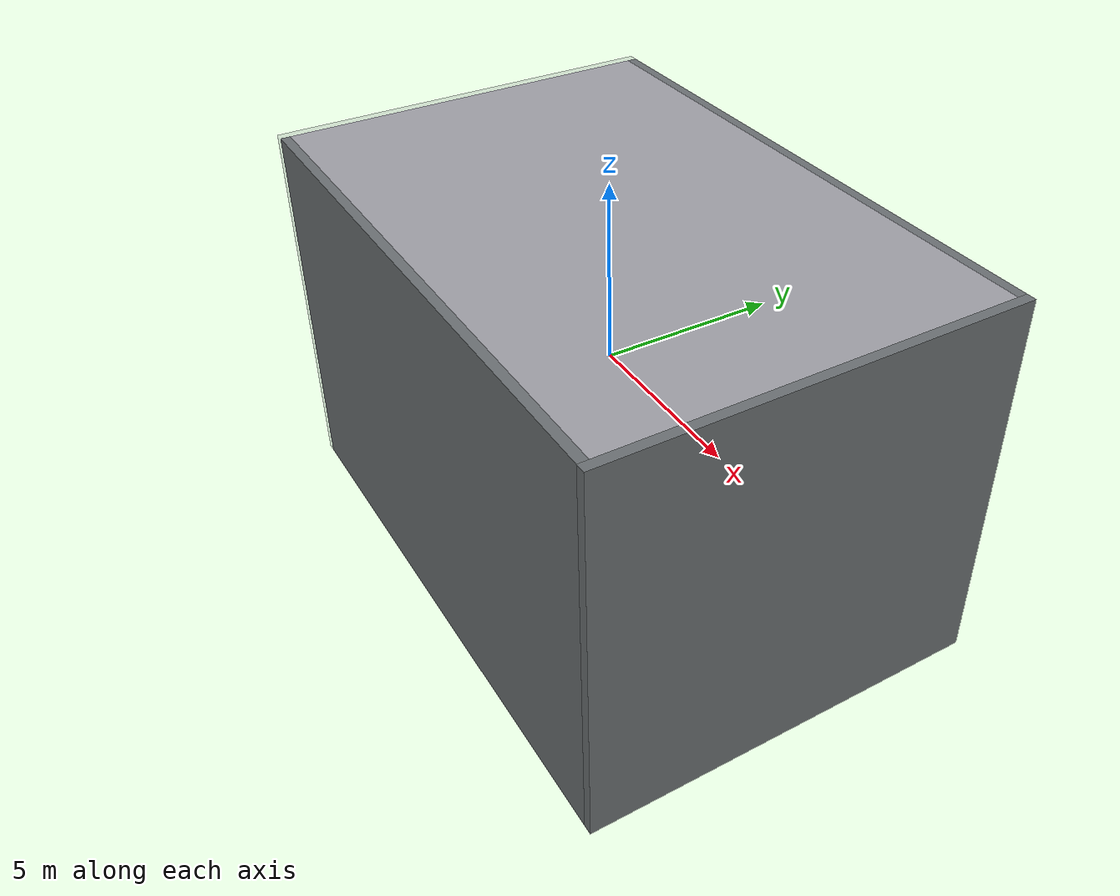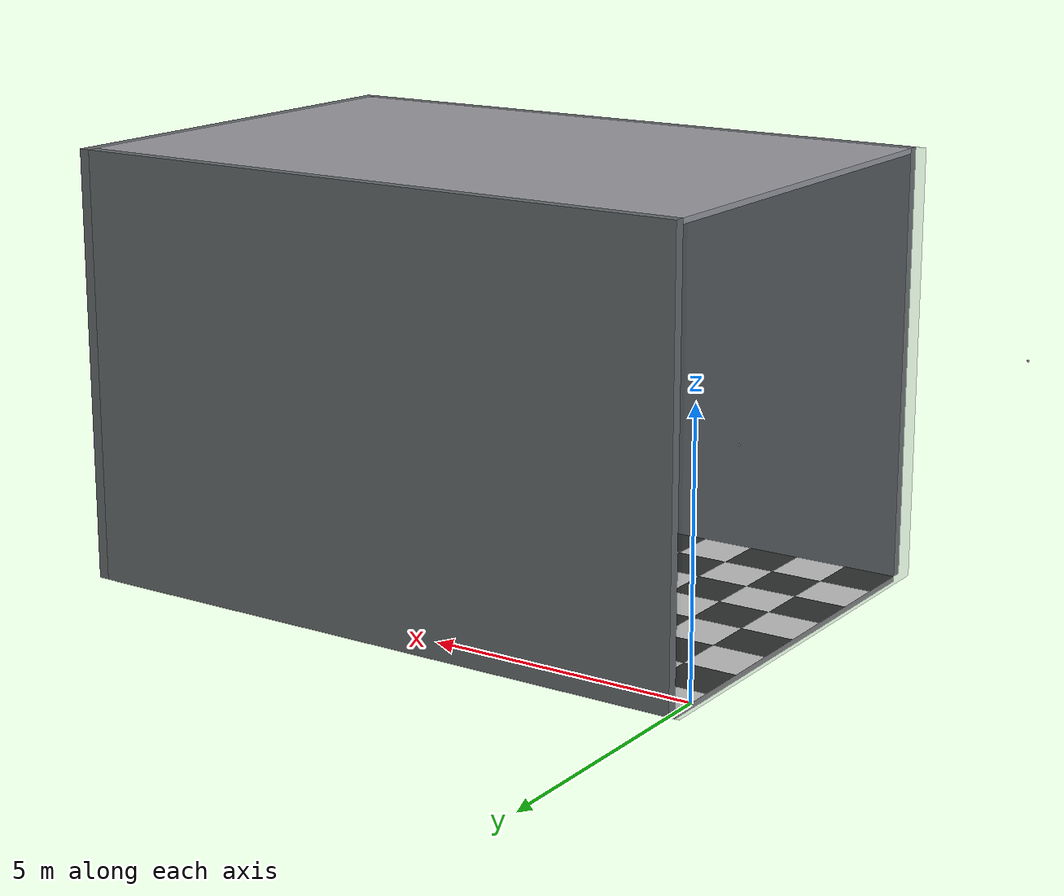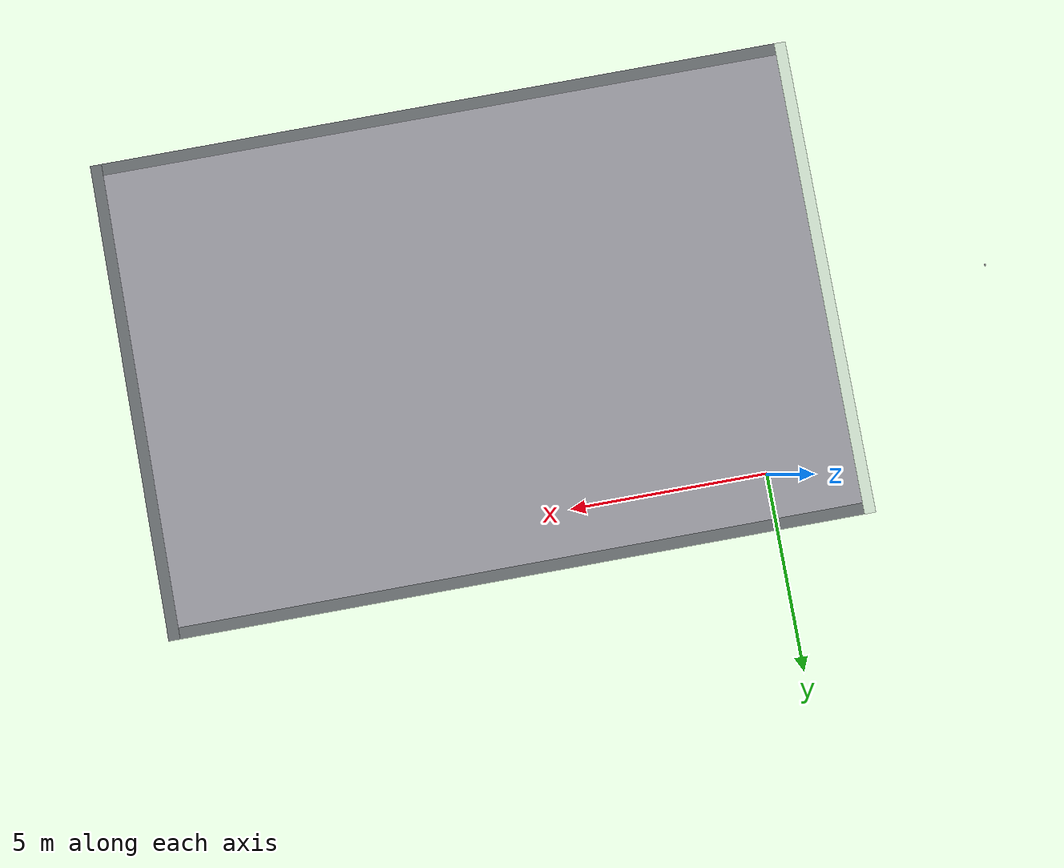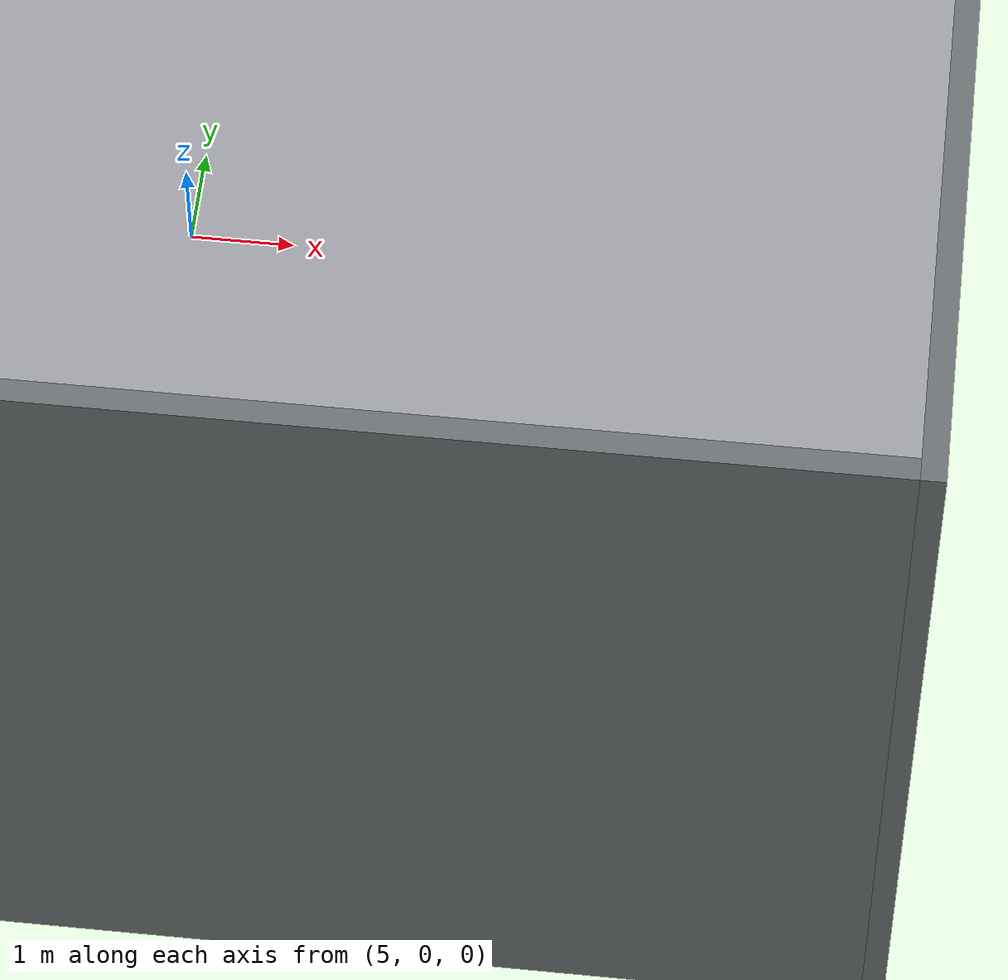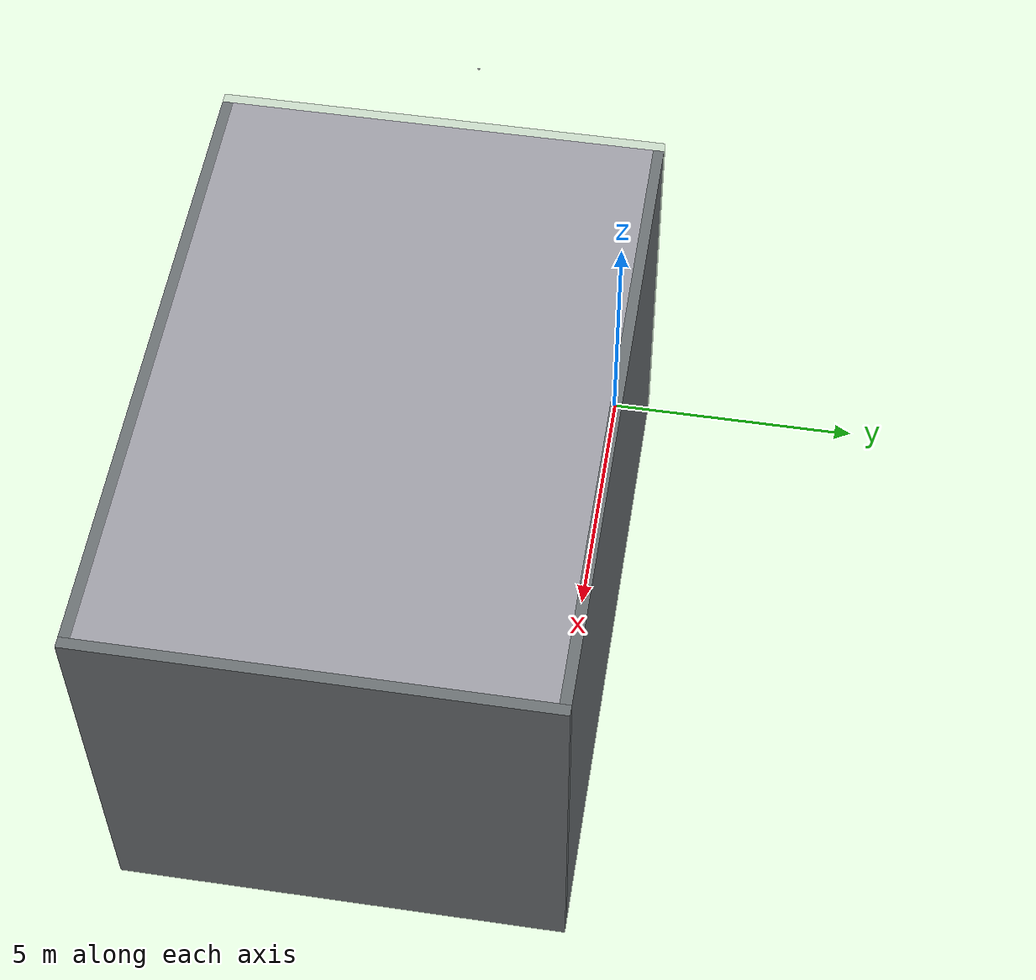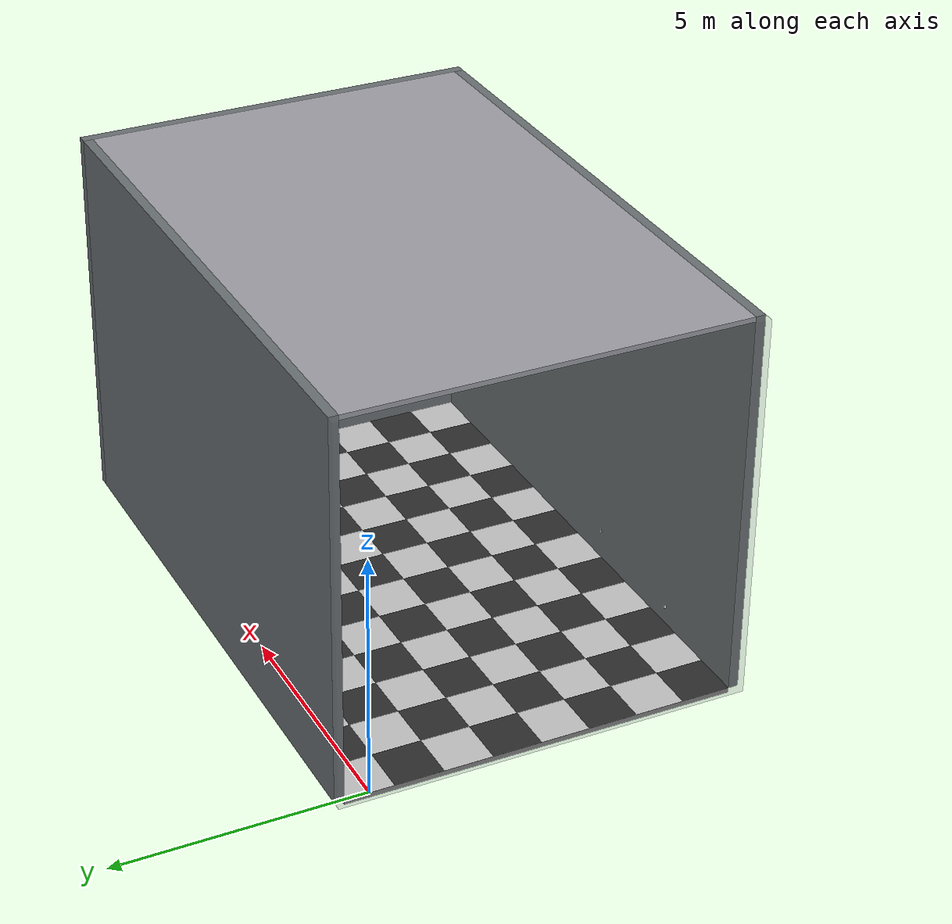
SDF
<?xml version="1.0" encoding="UTF-8"?>
<sdf version="1.9">
  <world name="hangar_lite">
    <physics type="ode">
      <max_step_size>0.004</max_step_size>
      <real_time_factor>1.0</real_time_factor>
      <real_time_update_rate>250</real_time_update_rate>
    </physics>
    <gravity>0 0 -9.8</gravity>
    <magnetic_field>6e-06 2.3e-05 -4.2e-05</magnetic_field>
    <atmosphere type="adiabatic"/>
    <scene>
      <grid>false</grid>
      <ambient>0.45 0.45 0.45 1</ambient>
      <background>0.30 0.30 0.30 1</background>
      <shadows>false</shadows>
    </scene>

    <!-- ==================== FLOOR (12m x 8m) ==================== -->
    <model name="floor">
      <static>true</static>
      <pose>6 -3.5 -0.05 0 0 0</pose>
      <link name="link">
        <collision name="c">
          <geometry><box><size>12.0 8.0 0.1</size></box></geometry>
          <surface><friction><ode/></friction></surface>
        </collision>
        <visual name="v">
          <geometry><box><size>12.0 8.0 0.1</size></box></geometry>
          <material>
            <ambient>0.52 0.52 0.52 1</ambient>
            <diffuse>0.52 0.52 0.52 1</diffuse>
            <specular>0.08 0.08 0.08 1</specular>
          </material>
        </visual>
      </link>
    </model>

    <!-- Full 12m x 8m checkerboard floor (1m tiles, optical-flow friendly) -->
    <model name="floor_tiles">
      <static>true</static>
      <pose>0 0 0.0015 0 0 0</pose>
      <link name="tiles">
        <visual name="t_00_00"><pose>0.5 -7.0 0 0 0 0</pose><geometry><box><size>1 1 0.001</size></box></geometry><material><ambient>0.15 0.15 0.15 1</ambient><diffuse>0.15 0.15 0.15 1</diffuse></material></visual>
        <visual name="t_00_01"><pose>0.5 -6.0 0 0 0 0</pose><geometry><box><size>1 1 0.001</size></box></geometry><material><ambient>0.9 0.9 0.9 1</ambient><diffuse>0.9 0.9 0.9 1</diffuse></material></visual>
        <visual name="t_00_02"><pose>0.5 -5.0 0 0 0 0</pose><geometry><box><size>1 1 0.001</size></box></geometry><material><ambient>0.15 0.15 0.15 1</ambient><diffuse>0.15 0.15 0.15 1</diffuse></material></visual>
        <visual name="t_00_03"><pose>0.5 -4.0 0 0 0 0</pose><geometry><box><size>1 1 0.001</size></box></geometry><material><ambient>0.9 0.9 0.9 1</ambient><diffuse>0.9 0.9 0.9 1</diffuse></material></visual>
        <visual name="t_00_04"><pose>0.5 -3.0 0 0 0 0</pose><geometry><box><size>1 1 0.001</size></box></geometry><material><ambient>0.15 0.15 0.15 1</ambient><diffuse>0.15 0.15 0.15 1</diffuse></material></visual>
        <visual name="t_00_05"><pose>0.5 -2.0 0 0 0 0</pose><geometry><box><size>1 1 0.001</size></box></geometry><material><ambient>0.9 0.9 0.9 1</ambient><diffuse>0.9 0.9 0.9 1</diffuse></material></visual>
        <visual name="t_00_06"><pose>0.5 -1.0 0 0 0 0</pose><geometry><box><size>1 1 0.001</size></box></geometry><material><ambient>0.15 0.15 0.15 1</ambient><diffuse>0.15 0.15 0.15 1</diffuse></material></visual>
        <visual name="t_00_07"><pose>0.5 0.0 0 0 0 0</pose><geometry><box><size>1 1 0.001</size></box></geometry><material><ambient>0.9 0.9 0.9 1</ambient><diffuse>0.9 0.9 0.9 1</diffuse></material></visual>
        <visual name="t_01_00"><pose>1.5 -7.0 0 0 0 0</pose><geometry><box><size>1 1 0.001</size></box></geometry><material><ambient>0.9 0.9 0.9 1</ambient><diffuse>0.9 0.9 0.9 1</diffuse></material></visual>
        <visual name="t_01_01"><pose>1.5 -6.0 0 0 0 0</pose><geometry><box><size>1 1 0.001</size></box></geometry><material><ambient>0.15 0.15 0.15 1</ambient><diffuse>0.15 0.15 0.15 1</diffuse></material></visual>
        <visual name="t_01_02"><pose>1.5 -5.0 0 0 0 0</pose><geometry><box><size>1 1 0.001</size></box></geometry><material><ambient>0.9 0.9 0.9 1</ambient><diffuse>0.9 0.9 0.9 1</diffuse></material></visual>
        <visual name="t_01_03"><pose>1.5 -4.0 0 0 0 0</pose><geometry><box><size>1 1 0.001</size></box></geometry><material><ambient>0.15 0.15 0.15 1</ambient><diffuse>0.15 0.15 0.15 1</diffuse></material></visual>
        <visual name="t_01_04"><pose>1.5 -3.0 0 0 0 0</pose><geometry><box><size>1 1 0.001</size></box></geometry><material><ambient>0.9 0.9 0.9 1</ambient><diffuse>0.9 0.9 0.9 1</diffuse></material></visual>
        <visual name="t_01_05"><pose>1.5 -2.0 0 0 0 0</pose><geometry><box><size>1 1 0.001</size></box></geometry><material><ambient>0.15 0.15 0.15 1</ambient><diffuse>0.15 0.15 0.15 1</diffuse></material></visual>
        <visual name="t_01_06"><pose>1.5 -1.0 0 0 0 0</pose><geometry><box><size>1 1 0.001</size></box></geometry><material><ambient>0.9 0.9 0.9 1</ambient><diffuse>0.9 0.9 0.9 1</diffuse></material></visual>
        <visual name="t_01_07"><pose>1.5 0.0 0 0 0 0</pose><geometry><box><size>1 1 0.001</size></box></geometry><material><ambient>0.15 0.15 0.15 1</ambient><diffuse>0.15 0.15 0.15 1</diffuse></material></visual>
        <visual name="t_02_00"><pose>2.5 -7.0 0 0 0 0</pose><geometry><box><size>1 1 0.001</size></box></geometry><material><ambient>0.15 0.15 0.15 1</ambient><diffuse>0.15 0.15 0.15 1</diffuse></material></visual>
        <visual name="t_02_01"><pose>2.5 -6.0 0 0 0 0</pose><geometry><box><size>1 1 0.001</size></box></geometry><material><ambient>0.9 0.9 0.9 1</ambient><diffuse>0.9 0.9 0.9 1</diffuse></material></visual>
        <visual name="t_02_02"><pose>2.5 -5.0 0 0 0 0</pose><geometry><box><size>1 1 0.001</size></box></geometry><material><ambient>0.15 0.15 0.15 1</ambient><diffuse>0.15 0.15 0.15 1</diffuse></material></visual>
        <visual name="t_02_03"><pose>2.5 -4.0 0 0 0 0</pose><geometry><box><size>1 1 0.001</size></box></geometry><material><ambient>0.9 0.9 0.9 1</ambient><diffuse>0.9 0.9 0.9 1</diffuse></material></visual>
        <visual name="t_02_04"><pose>2.5 -3.0 0 0 0 0</pose><geometry><box><size>1 1 0.001</size></box></geometry><material><ambient>0.15 0.15 0.15 1</ambient><diffuse>0.15 0.15 0.15 1</diffuse></material></visual>
        <visual name="t_02_05"><pose>2.5 -2.0 0 0 0 0</pose><geometry><box><size>1 1 0.001</size></box></geometry><material><ambient>0.9 0.9 0.9 1</ambient><diffuse>0.9 0.9 0.9 1</diffuse></material></visual>
        <visual name="t_02_06"><pose>2.5 -1.0 0 0 0 0</pose><geometry><box><size>1 1 0.001</size></box></geometry><material><ambient>0.15 0.15 0.15 1</ambient><diffuse>0.15 0.15 0.15 1</diffuse></material></visual>
        <visual name="t_02_07"><pose>2.5 0.0 0 0 0 0</pose><geometry><box><size>1 1 0.001</size></box></geometry><material><ambient>0.9 0.9 0.9 1</ambient><diffuse>0.9 0.9 0.9 1</diffuse></material></visual>
        <visual name="t_03_00"><pose>3.5 -7.0 0 0 0 0</pose><geometry><box><size>1 1 0.001</size></box></geometry><material><ambient>0.9 0.9 0.9 1</ambient><diffuse>0.9 0.9 0.9 1</diffuse></material></visual>
        <visual name="t_03_01"><pose>3.5 -6.0 0 0 0 0</pose><geometry><box><size>1 1 0.001</size></box></geometry><material><ambient>0.15 0.15 0.15 1</ambient><diffuse>0.15 0.15 0.15 1</diffuse></material></visual>
        <visual name="t_03_02"><pose>3.5 -5.0 0 0 0 0</pose><geometry><box><size>1 1 0.001</size></box></geometry><material><ambient>0.9 0.9 0.9 1</ambient><diffuse>0.9 0.9 0.9 1</diffuse></material></visual>
        <visual name="t_03_03"><pose>3.5 -4.0 0 0 0 0</pose><geometry><box><size>1 1 0.001</size></box></geometry><material><ambient>0.15 0.15 0.15 1</ambient><diffuse>0.15 0.15 0.15 1</diffuse></material></visual>
        <visual name="t_03_04"><pose>3.5 -3.0 0 0 0 0</pose><geometry><box><size>1 1 0.001</size></box></geometry><material><ambient>0.9 0.9 0.9 1</ambient><diffuse>0.9 0.9 0.9 1</diffuse></material></visual>
        <visual name="t_03_05"><pose>3.5 -2.0 0 0 0 0</pose><geometry><box><size>1 1 0.001</size></box></geometry><material><ambient>0.15 0.15 0.15 1</ambient><diffuse>0.15 0.15 0.15 1</diffuse></material></visual>
        <visual name="t_03_06"><pose>3.5 -1.0 0 0 0 0</pose><geometry><box><size>1 1 0.001</size></box></geometry><material><ambient>0.9 0.9 0.9 1</ambient><diffuse>0.9 0.9 0.9 1</diffuse></material></visual>
        <visual name="t_03_07"><pose>3.5 0.0 0 0 0 0</pose><geometry><box><size>1 1 0.001</size></box></geometry><material><ambient>0.15 0.15 0.15 1</ambient><diffuse>0.15 0.15 0.15 1</diffuse></material></visual>
        <visual name="t_04_00"><pose>4.5 -7.0 0 0 0 0</pose><geometry><box><size>1 1 0.001</size></box></geometry><material><ambient>0.15 0.15 0.15 1</ambient><diffuse>0.15 0.15 0.15 1</diffuse></material></visual>
        <visual name="t_04_01"><pose>4.5 -6.0 0 0 0 0</pose><geometry><box><size>1 1 0.001</size></box></geometry><material><ambient>0.9 0.9 0.9 1</ambient><diffuse>0.9 0.9 0.9 1</diffuse></material></visual>
        <visual name="t_04_02"><pose>4.5 -5.0 0 0 0 0</pose><geometry><box><size>1 1 0.001</size></box></geometry><material><ambient>0.15 0.15 0.15 1</ambient><diffuse>0.15 0.15 0.15 1</diffuse></material></visual>
        <visual name="t_04_03"><pose>4.5 -4.0 0 0 0 0</pose><geometry><box><size>1 1 0.001</size></box></geometry><material><ambient>0.9 0.9 0.9 1</ambient><diffuse>0.9 0.9 0.9 1</diffuse></material></visual>
        <visual name="t_04_04"><pose>4.5 -3.0 0 0 0 0</pose><geometry><box><size>1 1 0.001</size></box></geometry><material><ambient>0.15 0.15 0.15 1</ambient><diffuse>0.15 0.15 0.15 1</diffuse></material></visual>
        <visual name="t_04_05"><pose>4.5 -2.0 0 0 0 0</pose><geometry><box><size>1 1 0.001</size></box></geometry><material><ambient>0.9 0.9 0.9 1</ambient><diffuse>0.9 0.9 0.9 1</diffuse></material></visual>
        <visual name="t_04_06"><pose>4.5 -1.0 0 0 0 0</pose><geometry><box><size>1 1 0.001</size></box></geometry><material><ambient>0.15 0.15 0.15 1</ambient><diffuse>0.15 0.15 0.15 1</diffuse></material></visual>
        <visual name="t_04_07"><pose>4.5 0.0 0 0 0 0</pose><geometry><box><size>1 1 0.001</size></box></geometry><material><ambient>0.9 0.9 0.9 1</ambient><diffuse>0.9 0.9 0.9 1</diffuse></material></visual>
        <visual name="t_05_00"><pose>5.5 -7.0 0 0 0 0</pose><geometry><box><size>1 1 0.001</size></box></geometry><material><ambient>0.9 0.9 0.9 1</ambient><diffuse>0.9 0.9 0.9 1</diffuse></material></visual>
        <visual name="t_05_01"><pose>5.5 -6.0 0 0 0 0</pose><geometry><box><size>1 1 0.001</size></box></geometry><material><ambient>0.15 0.15 0.15 1</ambient><diffuse>0.15 0.15 0.15 1</diffuse></material></visual>
        <visual name="t_05_02"><pose>5.5 -5.0 0 0 0 0</pose><geometry><box><size>1 1 0.001</size></box></geometry><material><ambient>0.9 0.9 0.9 1</ambient><diffuse>0.9 0.9 0.9 1</diffuse></material></visual>
        <visual name="t_05_03"><pose>5.5 -4.0 0 0 0 0</pose><geometry><box><size>1 1 0.001</size></box></geometry><material><ambient>0.15 0.15 0.15 1</ambient><diffuse>0.15 0.15 0.15 1</diffuse></material></visual>
        <visual name="t_05_04"><pose>5.5 -3.0 0 0 0 0</pose><geometry><box><size>1 1 0.001</size></box></geometry><material><ambient>0.9 0.9 0.9 1</ambient><diffuse>0.9 0.9 0.9 1</diffuse></material></visual>
        <visual name="t_05_05"><pose>5.5 -2.0 0 0 0 0</pose><geometry><box><size>1 1 0.001</size></box></geometry><material><ambient>0.15 0.15 0.15 1</ambient><diffuse>0.15 0.15 0.15 1</diffuse></material></visual>
        <visual name="t_05_06"><pose>5.5 -1.0 0 0 0 0</pose><geometry><box><size>1 1 0.001</size></box></geometry><material><ambient>0.9 0.9 0.9 1</ambient><diffuse>0.9 0.9 0.9 1</diffuse></material></visual>
        <visual name="t_05_07"><pose>5.5 0.0 0 0 0 0</pose><geometry><box><size>1 1 0.001</size></box></geometry><material><ambient>0.15 0.15 0.15 1</ambient><diffuse>0.15 0.15 0.15 1</diffuse></material></visual>
        <visual name="t_06_00"><pose>6.5 -7.0 0 0 0 0</pose><geometry><box><size>1 1 0.001</size></box></geometry><material><ambient>0.15 0.15 0.15 1</ambient><diffuse>0.15 0.15 0.15 1</diffuse></material></visual>
        <visual name="t_06_01"><pose>6.5 -6.0 0 0 0 0</pose><geometry><box><size>1 1 0.001</size></box></geometry><material><ambient>0.9 0.9 0.9 1</ambient><diffuse>0.9 0.9 0.9 1</diffuse></material></visual>
        <visual name="t_06_02"><pose>6.5 -5.0 0 0 0 0</pose><geometry><box><size>1 1 0.001</size></box></geometry><material><ambient>0.15 0.15 0.15 1</ambient><diffuse>0.15 0.15 0.15 1</diffuse></material></visual>
        <visual name="t_06_03"><pose>6.5 -4.0 0 0 0 0</pose><geometry><box><size>1 1 0.001</size></box></geometry><material><ambient>0.9 0.9 0.9 1</ambient><diffuse>0.9 0.9 0.9 1</diffuse></material></visual>
        <visual name="t_06_04"><pose>6.5 -3.0 0 0 0 0</pose><geometry><box><size>1 1 0.001</size></box></geometry><material><ambient>0.15 0.15 0.15 1</ambient><diffuse>0.15 0.15 0.15 1</diffuse></material></visual>
        <visual name="t_06_05"><pose>6.5 -2.0 0 0 0 0</pose><geometry><box><size>1 1 0.001</size></box></geometry><material><ambient>0.9 0.9 0.9 1</ambient><diffuse>0.9 0.9 0.9 1</diffuse></material></visual>
        <visual name="t_06_06"><pose>6.5 -1.0 0 0 0 0</pose><geometry><box><size>1 1 0.001</size></box></geometry><material><ambient>0.15 0.15 0.15 1</ambient><diffuse>0.15 0.15 0.15 1</diffuse></material></visual>
        <visual name="t_06_07"><pose>6.5 0.0 0 0 0 0</pose><geometry><box><size>1 1 0.001</size></box></geometry><material><ambient>0.9 0.9 0.9 1</ambient><diffuse>0.9 0.9 0.9 1</diffuse></material></visual>
        <visual name="t_07_00"><pose>7.5 -7.0 0 0 0 0</pose><geometry><box><size>1 1 0.001</size></box></geometry><material><ambient>0.9 0.9 0.9 1</ambient><diffuse>0.9 0.9 0.9 1</diffuse></material></visual>
        <visual name="t_07_01"><pose>7.5 -6.0 0 0 0 0</pose><geometry><box><size>1 1 0.001</size></box></geometry><material><ambient>0.15 0.15 0.15 1</ambient><diffuse>0.15 0.15 0.15 1</diffuse></material></visual>
        <visual name="t_07_02"><pose>7.5 -5.0 0 0 0 0</pose><geometry><box><size>1 1 0.001</size></box></geometry><material><ambient>0.9 0.9 0.9 1</ambient><diffuse>0.9 0.9 0.9 1</diffuse></material></visual>
        <visual name="t_07_03"><pose>7.5 -4.0 0 0 0 0</pose><geometry><box><size>1 1 0.001</size></box></geometry><material><ambient>0.15 0.15 0.15 1</ambient><diffuse>0.15 0.15 0.15 1</diffuse></material></visual>
        <visual name="t_07_04"><pose>7.5 -3.0 0 0 0 0</pose><geometry><box><size>1 1 0.001</size></box></geometry><material><ambient>0.9 0.9 0.9 1</ambient><diffuse>0.9 0.9 0.9 1</diffuse></material></visual>
        <visual name="t_07_05"><pose>7.5 -2.0 0 0 0 0</pose><geometry><box><size>1 1 0.001</size></box></geometry><material><ambient>0.15 0.15 0.15 1</ambient><diffuse>0.15 0.15 0.15 1</diffuse></material></visual>
        <visual name="t_07_06"><pose>7.5 -1.0 0 0 0 0</pose><geometry><box><size>1 1 0.001</size></box></geometry><material><ambient>0.9 0.9 0.9 1</ambient><diffuse>0.9 0.9 0.9 1</diffuse></material></visual>
        <visual name="t_07_07"><pose>7.5 0.0 0 0 0 0</pose><geometry><box><size>1 1 0.001</size></box></geometry><material><ambient>0.15 0.15 0.15 1</ambient><diffuse>0.15 0.15 0.15 1</diffuse></material></visual>
        <visual name="t_08_00"><pose>8.5 -7.0 0 0 0 0</pose><geometry><box><size>1 1 0.001</size></box></geometry><material><ambient>0.15 0.15 0.15 1</ambient><diffuse>0.15 0.15 0.15 1</diffuse></material></visual>
        <visual name="t_08_01"><pose>8.5 -6.0 0 0 0 0</pose><geometry><box><size>1 1 0.001</size></box></geometry><material><ambient>0.9 0.9 0.9 1</ambient><diffuse>0.9 0.9 0.9 1</diffuse></material></visual>
        <visual name="t_08_02"><pose>8.5 -5.0 0 0 0 0</pose><geometry><box><size>1 1 0.001</size></box></geometry><material><ambient>0.15 0.15 0.15 1</ambient><diffuse>0.15 0.15 0.15 1</diffuse></material></visual>
        <visual name="t_08_03"><pose>8.5 -4.0 0 0 0 0</pose><geometry><box><size>1 1 0.001</size></box></geometry><material><ambient>0.9 0.9 0.9 1</ambient><diffuse>0.9 0.9 0.9 1</diffuse></material></visual>
        <visual name="t_08_04"><pose>8.5 -3.0 0 0 0 0</pose><geometry><box><size>1 1 0.001</size></box></geometry><material><ambient>0.15 0.15 0.15 1</ambient><diffuse>0.15 0.15 0.15 1</diffuse></material></visual>
        <visual name="t_08_05"><pose>8.5 -2.0 0 0 0 0</pose><geometry><box><size>1 1 0.001</size></box></geometry><material><ambient>0.9 0.9 0.9 1</ambient><diffuse>0.9 0.9 0.9 1</diffuse></material></visual>
        <visual name="t_08_06"><pose>8.5 -1.0 0 0 0 0</pose><geometry><box><size>1 1 0.001</size></box></geometry><material><ambient>0.15 0.15 0.15 1</ambient><diffuse>0.15 0.15 0.15 1</diffuse></material></visual>
        <visual name="t_08_07"><pose>8.5 0.0 0 0 0 0</pose><geometry><box><size>1 1 0.001</size></box></geometry><material><ambient>0.9 0.9 0.9 1</ambient><diffuse>0.9 0.9 0.9 1</diffuse></material></visual>
        <visual name="t_09_00"><pose>9.5 -7.0 0 0 0 0</pose><geometry><box><size>1 1 0.001</size></box></geometry><material><ambient>0.9 0.9 0.9 1</ambient><diffuse>0.9 0.9 0.9 1</diffuse></material></visual>
        <visual name="t_09_01"><pose>9.5 -6.0 0 0 0 0</pose><geometry><box><size>1 1 0.001</size></box></geometry><material><ambient>0.15 0.15 0.15 1</ambient><diffuse>0.15 0.15 0.15 1</diffuse></material></visual>
        <visual name="t_09_02"><pose>9.5 -5.0 0 0 0 0</pose><geometry><box><size>1 1 0.001</size></box></geometry><material><ambient>0.9 0.9 0.9 1</ambient><diffuse>0.9 0.9 0.9 1</diffuse></material></visual>
        <visual name="t_09_03"><pose>9.5 -4.0 0 0 0 0</pose><geometry><box><size>1 1 0.001</size></box></geometry><material><ambient>0.15 0.15 0.15 1</ambient><diffuse>0.15 0.15 0.15 1</diffuse></material></visual>
        <visual name="t_09_04"><pose>9.5 -3.0 0 0 0 0</pose><geometry><box><size>1 1 0.001</size></box></geometry><material><ambient>0.9 0.9 0.9 1</ambient><diffuse>0.9 0.9 0.9 1</diffuse></material></visual>
        <visual name="t_09_05"><pose>9.5 -2.0 0 0 0 0</pose><geometry><box><size>1 1 0.001</size></box></geometry><material><ambient>0.15 0.15 0.15 1</ambient><diffuse>0.15 0.15 0.15 1</diffuse></material></visual>
        <visual name="t_09_06"><pose>9.5 -1.0 0 0 0 0</pose><geometry><box><size>1 1 0.001</size></box></geometry><material><ambient>0.9 0.9 0.9 1</ambient><diffuse>0.9 0.9 0.9 1</diffuse></material></visual>
        <visual name="t_09_07"><pose>9.5 0.0 0 0 0 0</pose><geometry><box><size>1 1 0.001</size></box></geometry><material><ambient>0.15 0.15 0.15 1</ambient><diffuse>0.15 0.15 0.15 1</diffuse></material></visual>
        <visual name="t_10_00"><pose>10.5 -7.0 0 0 0 0</pose><geometry><box><size>1 1 0.001</size></box></geometry><material><ambient>0.15 0.15 0.15 1</ambient><diffuse>0.15 0.15 0.15 1</diffuse></material></visual>
        <visual name="t_10_01"><pose>10.5 -6.0 0 0 0 0</pose><geometry><box><size>1 1 0.001</size></box></geometry><material><ambient>0.9 0.9 0.9 1</ambient><diffuse>0.9 0.9 0.9 1</diffuse></material></visual>
        <visual name="t_10_02"><pose>10.5 -5.0 0 0 0 0</pose><geometry><box><size>1 1 0.001</size></box></geometry><material><ambient>0.15 0.15 0.15 1</ambient><diffuse>0.15 0.15 0.15 1</diffuse></material></visual>
        <visual name="t_10_03"><pose>10.5 -4.0 0 0 0 0</pose><geometry><box><size>1 1 0.001</size></box></geometry><material><ambient>0.9 0.9 0.9 1</ambient><diffuse>0.9 0.9 0.9 1</diffuse></material></visual>
        <visual name="t_10_04"><pose>10.5 -3.0 0 0 0 0</pose><geometry><box><size>1 1 0.001</size></box></geometry><material><ambient>0.15 0.15 0.15 1</ambient><diffuse>0.15 0.15 0.15 1</diffuse></material></visual>
        <visual name="t_10_05"><pose>10.5 -2.0 0 0 0 0</pose><geometry><box><size>1 1 0.001</size></box></geometry><material><ambient>0.9 0.9 0.9 1</ambient><diffuse>0.9 0.9 0.9 1</diffuse></material></visual>
        <visual name="t_10_06"><pose>10.5 -1.0 0 0 0 0</pose><geometry><box><size>1 1 0.001</size></box></geometry><material><ambient>0.15 0.15 0.15 1</ambient><diffuse>0.15 0.15 0.15 1</diffuse></material></visual>
        <visual name="t_10_07"><pose>10.5 0.0 0 0 0 0</pose><geometry><box><size>1 1 0.001</size></box></geometry><material><ambient>0.9 0.9 0.9 1</ambient><diffuse>0.9 0.9 0.9 1</diffuse></material></visual>
        <visual name="t_11_00"><pose>11.5 -7.0 0 0 0 0</pose><geometry><box><size>1 1 0.001</size></box></geometry><material><ambient>0.9 0.9 0.9 1</ambient><diffuse>0.9 0.9 0.9 1</diffuse></material></visual>
        <visual name="t_11_01"><pose>11.5 -6.0 0 0 0 0</pose><geometry><box><size>1 1 0.001</size></box></geometry><material><ambient>0.15 0.15 0.15 1</ambient><diffuse>0.15 0.15 0.15 1</diffuse></material></visual>
        <visual name="t_11_02"><pose>11.5 -5.0 0 0 0 0</pose><geometry><box><size>1 1 0.001</size></box></geometry><material><ambient>0.9 0.9 0.9 1</ambient><diffuse>0.9 0.9 0.9 1</diffuse></material></visual>
        <visual name="t_11_03"><pose>11.5 -4.0 0 0 0 0</pose><geometry><box><size>1 1 0.001</size></box></geometry><material><ambient>0.15 0.15 0.15 1</ambient><diffuse>0.15 0.15 0.15 1</diffuse></material></visual>
        <visual name="t_11_04"><pose>11.5 -3.0 0 0 0 0</pose><geometry><box><size>1 1 0.001</size></box></geometry><material><ambient>0.9 0.9 0.9 1</ambient><diffuse>0.9 0.9 0.9 1</diffuse></material></visual>
        <visual name="t_11_05"><pose>11.5 -2.0 0 0 0 0</pose><geometry><box><size>1 1 0.001</size></box></geometry><material><ambient>0.15 0.15 0.15 1</ambient><diffuse>0.15 0.15 0.15 1</diffuse></material></visual>
        <visual name="t_11_06"><pose>11.5 -1.0 0 0 0 0</pose><geometry><box><size>1 1 0.001</size></box></geometry><material><ambient>0.9 0.9 0.9 1</ambient><diffuse>0.9 0.9 0.9 1</diffuse></material></visual>
        <visual name="t_11_07"><pose>11.5 0.0 0 0 0 0</pose><geometry><box><size>1 1 0.001</size></box></geometry><material><ambient>0.15 0.15 0.15 1</ambient><diffuse>0.15 0.15 0.15 1</diffuse></material></visual>
      </link>
    </model>

    <!-- ==================== WALLS & CEILING (12m x 8m x 8m) ==================== -->
    <!-- Interior X range: [0.0, 12.0], interior Y range: [-7.5, 0.5] -->
    <model name="wall_north">
      <static>true</static><pose>12.1 -3.5 4.0 0 0 0</pose>
      <link name="link">
        <collision name="c"><geometry><box><size>0.2 8.4 8.0</size></box></geometry></collision>
        <visual name="v"><geometry><box><size>0.2 8.4 8.0</size></box></geometry>
          <material><ambient>0.42 0.44 0.45 1</ambient><diffuse>0.42 0.44 0.45 1</diffuse><specular>0.12 0.12 0.12 1</specular></material></visual>
      </link>
    </model>

    <model name="wall_south">
      <static>true</static><pose>-0.1 -3.5 4.0 0 0 0</pose>
      <link name="link">
        <collision name="c"><geometry><box><size>0.2 8.4 8.0</size></box></geometry></collision>
        <visual name="v">
          <!-- GUI-only: frosted in editor, invisible to camera sensors -->
          <visibility_flags>1</visibility_flags>
          <transparency>0.78</transparency>
          <geometry><box><size>0.2 8.4 8.0</size></box></geometry>
          <material><ambient>0.42 0.44 0.45 0.22</ambient><diffuse>0.42 0.44 0.45 0.22</diffuse><specular>0.12 0.12 0.12 0.22</specular></material></visual>
      </link>
    </model>

    <model name="wall_east">
      <static>true</static><pose>6 0.6 4.0 0 0 0</pose>
      <link name="link">
        <collision name="c"><geometry><box><size>12.0 0.2 8.0</size></box></geometry></collision>
        <visual name="v"><geometry><box><size>12.0 0.2 8.0</size></box></geometry>
          <material><ambient>0.42 0.44 0.45 1</ambient><diffuse>0.42 0.44 0.45 1</diffuse><specular>0.12 0.12 0.12 1</specular></material></visual>
      </link>
    </model>

    <model name="wall_west">
      <static>true</static><pose>6 -7.6 4.0 0 0 0</pose>
      <link name="link">
        <collision name="c"><geometry><box><size>12.0 0.2 8.0</size></box></geometry></collision>
        <visual name="v"><geometry><box><size>12.0 0.2 8.0</size></box></geometry>
          <material><ambient>0.42 0.44 0.45 1</ambient><diffuse>0.42 0.44 0.45 1</diffuse><specular>0.12 0.12 0.12 1</specular></material></visual>
      </link>
    </model>

    <model name="ceiling">
      <static>true</static><pose>6 -3.5 7.95 0 0 0</pose>
      <link name="link">
        <collision name="c"><geometry><box><size>12.0 8.0 0.1</size></box></geometry></collision>
        <visual name="v"><geometry><box><size>12.0 8.0 0.1</size></box></geometry>
          <material>
            <ambient>0.62 0.62 0.65 1</ambient>
            <diffuse>0.62 0.62 0.65 1</diffuse>
            <specular>0.03 0.03 0.03 1</specular>
          </material>
        </visual>
      </link>
    </model>

    <!-- ==================== LIGHTING ==================== -->
    <light name="light_bay_1" type="point">
      <pose>4 -3.5 7.8 0 0 0</pose><cast_shadows>false</cast_shadows>
      <intensity>1.3</intensity><diffuse>1.0 1.0 1.0 1</diffuse><specular>0.3 0.3 0.3 1</specular>
      <attenuation><range>14</range><linear>0.05</linear><constant>0.6</constant><quadratic>0.01</quadratic></attenuation>
    </light>

    <light name="light_bay_2" type="point">
      <pose>8 -3.5 7.8 0 0 0</pose><cast_shadows>false</cast_shadows>
      <intensity>1.3</intensity><diffuse>1.0 1.0 1.0 1</diffuse><specular>0.3 0.3 0.3 1</specular>
      <attenuation><range>14</range><linear>0.05</linear><constant>0.6</constant><quadratic>0.01</quadratic></attenuation>
    </light>

    <!-- Target centered east-west and 1.5m from the north wall -->
    <include>
      <uri>model://pigeon_3d</uri>
      <name>pigeon_1</name>
      <!--  North wall position -->
      <pose>10.5 -3.5 2.5 0 0 0</pose>
    </include>

    <include>
      <uri>model://pigeon_3d</uri>
      <name>pigeon_2</name>
      <!-- East/South wall position -->
      <pose>2.5 -6 2.5 0 0 0</pose>
    </include>

    <include>
      <uri>model://mono_cam_hd</uri>
      <name>fixed_cam</name>
      <!-- Outside transparent south wall (x=-0.1), elevated overview facing +X -->
      <pose>-4 -3.5 5.5 0 0.4 0</pose>
      <static>true</static>
    </include>

    <include>
      <uri>model://mono_cam_hd</uri>
      <name>center_cam</name>
      <pose>6 -3.5 7.7 0 1.5708 0</pose>
      <static>true</static>
    </include>

    <spherical_coordinates>
      <surface_model>EARTH_WGS84</surface_model>
      <latitude_deg>0</latitude_deg>
      <longitude_deg>0</longitude_deg>
      <elevation>0</elevation>
    </spherical_coordinates>
  </world>
</sdf>

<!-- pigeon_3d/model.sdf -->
<sdf version="1.9">
  <model name="pigeon_3d">
    <static>true</static>
    <link name="body">
      <!-- GLB (Sketchfab Y_UP) → Gazebo Z_UP: roll=+1.5708; yaw=3.14159 faces -X toward drone -->
      <!-- Scale 1.0 to start — adjust after first launch -->
      <visual name="visual">
        <pose>0 0 0 1.5708 0 3.14159</pose>
        <geometry>
          <mesh>
            <uri>model://pigeon_3d/meshes/pigeon.glb</uri>
            <scale>0.16 0.16 0.16</scale>
          </mesh>
        </geometry>
      </visual>
      <collision name="collision">
        <geometry>
          <box><size>0.32 0.12 0.12</size></box>
        </geometry>
      </collision>
    </link>
  </model>
</sdf>

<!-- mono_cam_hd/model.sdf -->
<sdf version='1.9'>
  <model name='mono_cam_hd'>
    <pose>0 0 0 0 0 0</pose>
    <self_collide>false</self_collide>
    <static>false</static>
    <link name="camera_link">
      <inertial>
        <pose>0.03 0.03 0.03 0 0 0</pose>
        <mass>0.050</mass>
        <inertia>
          <ixx>0.00004</ixx>
          <ixy>0</ixy>
          <ixz>0</ixz>
          <iyy>0.00004</iyy>
          <iyz>0</iyz>
          <izz>0.00004</izz>
        </inertia>
      </inertial>
      <visual name="mono_cam_hd/visual/housing">
        <geometry>
          <box>
            <size>0.02 0.04 0.04</size>
          </box>
        </geometry>
      </visual>
      <visual name="mono_cam_hd/visual/lens">
        <pose>0.015 0 0 0 1.5707 0</pose>
        <geometry>
          <cylinder>
            <radius>0.008</radius>
            <length>0.01</length>
          </cylinder>
        </geometry>
      </visual>
      <visual name="mono_cam_hd/visual/lens_glass">
        <pose>0.014 0 0 0 0 0</pose>
        <geometry>
          <sphere>
            <radius>0.0079</radius>
          </sphere>
        </geometry>
        <material>
          <ambient>.4 .4 .5 .95</ambient>
          <diffuse>.4 .4 .5 .95</diffuse>
          <specular>1 1 1 1</specular>
          <emissive>0 0 0 1</emissive>
        </material>
      </visual>
      <sensor name="camera" type="camera">
        <gz_frame_id>camera_link</gz_frame_id>
        <pose>0 0 0 0 0 0</pose>
        <camera>
          <horizontal_fov>1.74</horizontal_fov>
          <image>
            <width>1920</width>
            <height>1080</height>
          </image>
          <clip>
            <near>0.1</near>
            <far>100</far>
          </clip>
          <anti_aliasing>4</anti_aliasing>
          <visibility_mask>3</visibility_mask>
        </camera>
        <always_on>1</always_on>
        <update_rate>6</update_rate>
        <visualize>true</visualize>
      </sensor>
      <gravity>true</gravity>
      <velocity_decay />
    </link>
  </model>
</sdf>
